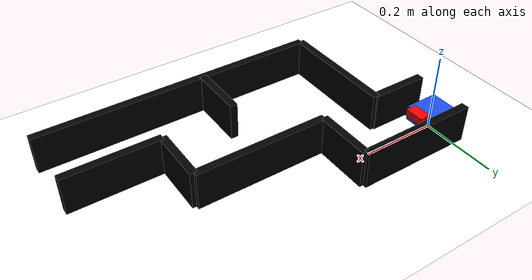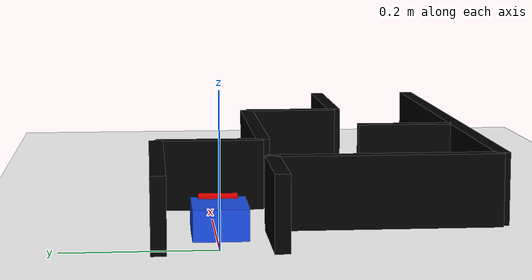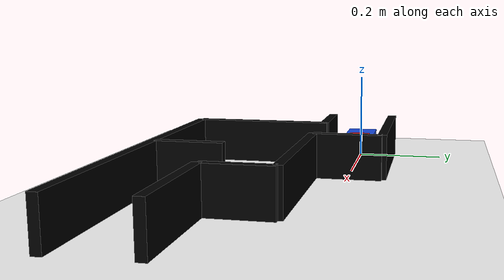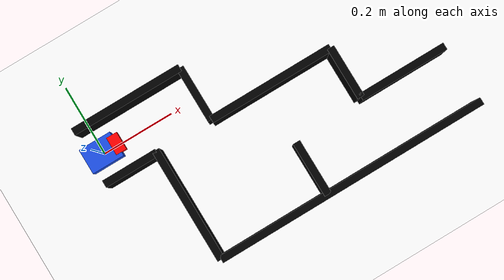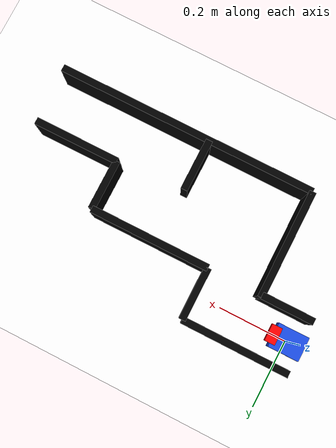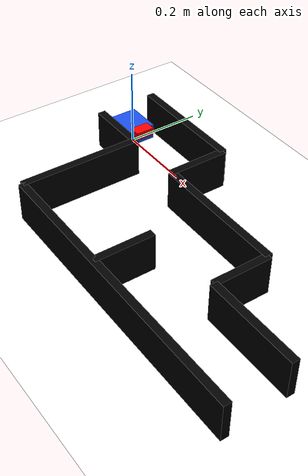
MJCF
<mujoco model="pololu_maze_ground_truth">
  <compiler angle="degree"/>
  <option timestep="0.01" gravity="0 0 -9.81"/>
  <visual>
    <global azimuth="90" elevation="-90"/>
    <rgba haze="1 1 1 1"/>
    <headlight ambient="0.8 0.8 0.8" diffuse="0.4 0.4 0.4" specular="0 0 0"/>
  </visual>

  <asset>
    <texture name="white_skybox" type="skybox" builtin="flat" rgb1="1 1 1" width="512" height="512"/>

    <material name="floor_mat" rgba="1 1 1 1"/>
    <material name="wall_mat" rgba="0 0 0 1"/>
    <material name="robot_mat" rgba="0.1 0.3 0.9 1"/>
    <material name="front_mat" rgba="1 0 0 1"/>
  </asset>

  <worldbody>
    <geom name="floor" type="plane" size="0.707200 0.481775 0.02" pos="0.427990 -0.155575 0" material="floor_mat"/>

    <geom name="gt_wall_000" type="box" pos="0.504190 -0.387350 0.050000" euler="0 0 0.000000" size="0.381000 0.010000 0.050000" material="wall_mat" contype="0" conaffinity="0"/>
    <geom name="gt_wall_001" type="box" pos="0.123190 -0.228600 0.050000" euler="0 0 90.000000" size="0.158750 0.010000 0.050000" material="wall_mat" contype="0" conaffinity="0"/>
    <geom name="gt_wall_002" type="box" pos="0.046990 -0.076200 0.050000" euler="0 0 0.000000" size="0.076200 0.010000 0.050000" material="wall_mat" contype="0" conaffinity="0"/>
    <geom name="gt_wall_003" type="box" pos="0.281940 0.000000 0.050000" euler="0 0 90.000000" size="0.076200 0.010000 0.050000" material="wall_mat" contype="0" conaffinity="0"/>
    <geom name="gt_wall_004" type="box" pos="0.126365 0.076200 0.050000" euler="0 0 0.000000" size="0.155575 0.010000 0.050000" material="wall_mat" contype="0" conaffinity="0"/>
    <geom name="gt_wall_005" type="box" pos="0.456565 -0.076200 0.050000" euler="0 0 0.000000" size="0.174625 0.010000 0.050000" material="wall_mat" contype="0" conaffinity="0"/>
    <geom name="gt_wall_006" type="box" pos="0.631190 -0.149225 0.050000" euler="0 0 -90.000000" size="0.073025 0.010000 0.050000" material="wall_mat" contype="0" conaffinity="0"/>
    <geom name="gt_wall_007" type="box" pos="0.755015 -0.222250 0.050000" euler="0 0 0.000000" size="0.123825 0.010000 0.050000" material="wall_mat" contype="0" conaffinity="0"/>
    <geom name="gt_wall_008" type="box" pos="0.434340 -0.311150 0.050000" euler="0 0 90.000000" size="0.076200 0.010000 0.050000" material="wall_mat" contype="0" conaffinity="0"/>

    <body name="pololu" pos="0 0 0.040000" quat="1 0 0 0">
      <freejoint name="pololu_free"/>
      <geom name="robot_body" type="box" size="0.045 0.035 0.02" material="robot_mat"/>
      <geom name="robot_front" type="box" pos="0.045 0 0.012" size="0.015 0.025 0.01" material="front_mat"/>
    </body>
  </worldbody>
</mujoco>
